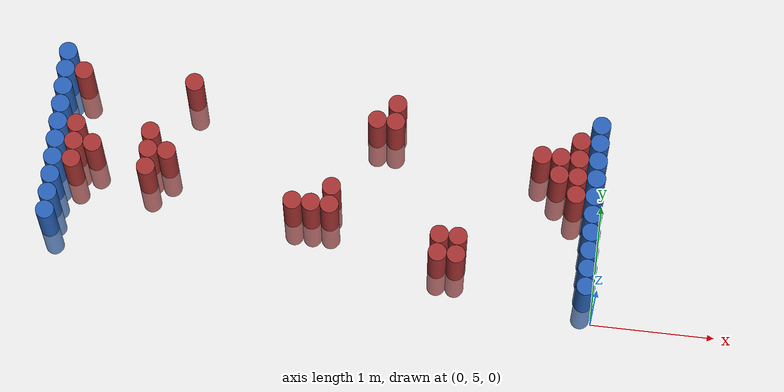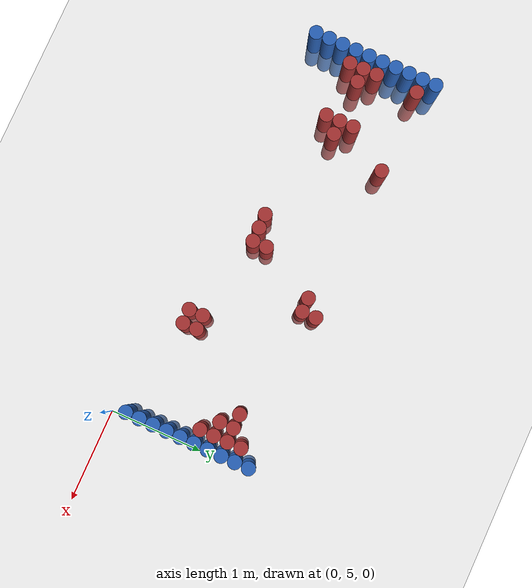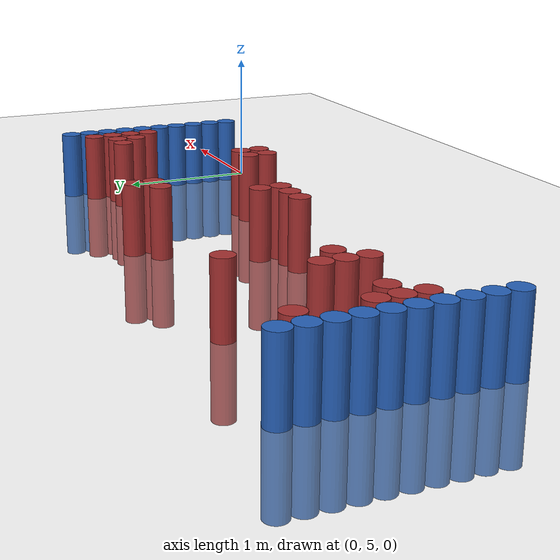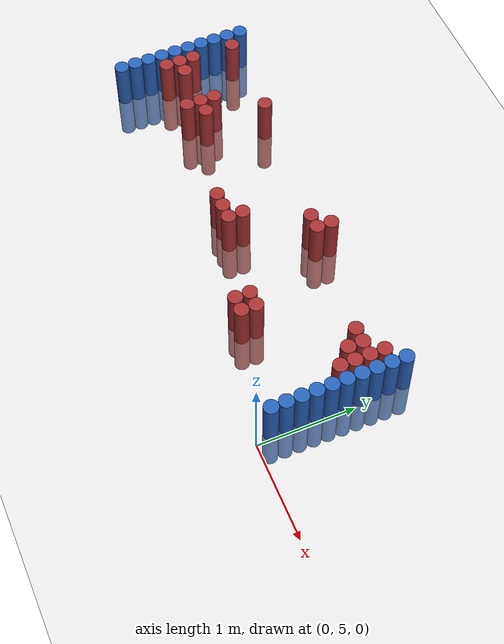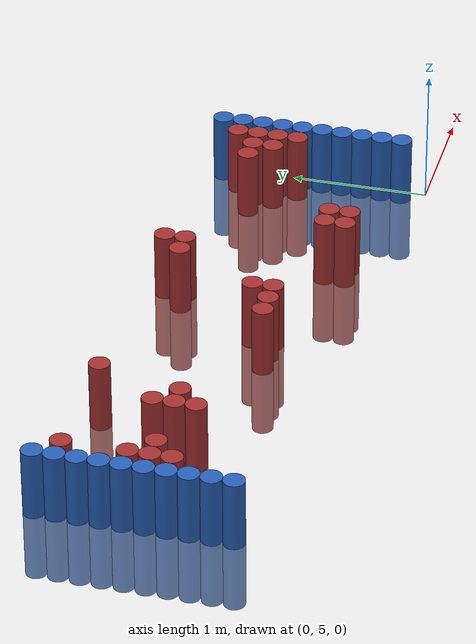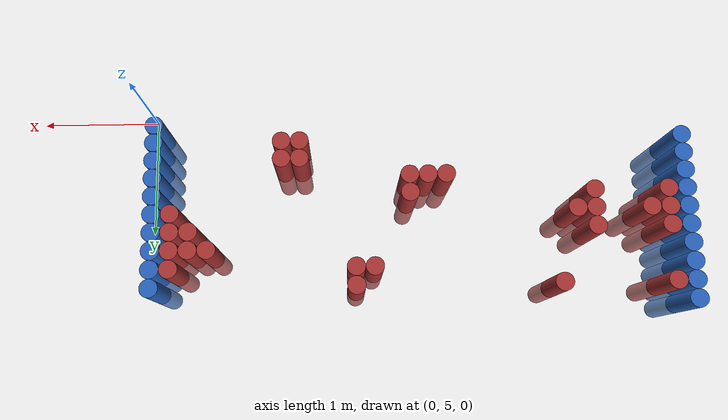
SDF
<sdf version="1.6">
 <world name="default">
  <model name="ground_plane">
   <static>1</static>
   <link name="link">
    <collision name="collision">
     <geometry><plane><normal>0 0 1</normal><size>100 100</size></plane></geometry>
     <surface><friction><ode><mu>100</mu><mu2>50</mu2></ode></friction></surface>
    </collision>
    <visual name="visual">
     <cast_shadows>0</cast_shadows>
     <geometry><plane><normal>0 0 1</normal><size>100 100</size></plane></geometry>
     <material>
      <script><uri>file://media/materials/scripts/gazebo.material</uri><name>Gazebo/Grey</name></script>
     </material>
    </visual>
   </link>
  </model>
  <model name="unit_cylinder_97">
   <static>1</static>
   <pose>-4.425000 5.325000 0.000000 0.000000 0.000000 0.000000</pose>
   <link name="link">
    <inertial>
     <mass>1</mass>
     <inertia><ixx>0.145833</ixx><ixy>0</ixy><ixz>0</ixz><iyy>0.145833</iyy><iyz>0</iyz><izz>0.125</izz></inertia>
    </inertial>
    <collision name="collision">
     <geometry><cylinder><radius>0.075000</radius><length>1</length></cylinder></geometry>
    </collision>
    <visual name="visual">
     <geometry><cylinder><radius>0.075000</radius><length>1</length></cylinder></geometry>
     <material>
      <ambient>0.152000 0.379000 0.720000 1</ambient>
      <diffuse>0.152000 0.379000 0.720000 1</diffuse>
     </material>
     <material>
      <script><name>Gazebo/Grey</name><uri>file://media/materials/scripts/gazebo.material</uri></script>
     </material>
    </visual>
   </link>
  </model>
  <model name="unit_cylinder_98">
   <static>1</static>
   <pose>-4.425000 5.475000 0.000000 0.000000 0.000000 0.000000</pose>
   <link name="link">
    <inertial>
     <mass>1</mass>
     <inertia><ixx>0.145833</ixx><ixy>0</ixy><ixz>0</ixz><iyy>0.145833</iyy><iyz>0</iyz><izz>0.125</izz></inertia>
    </inertial>
    <collision name="collision">
     <geometry><cylinder><radius>0.075000</radius><length>1</length></cylinder></geometry>
    </collision>
    <visual name="visual">
     <geometry><cylinder><radius>0.075000</radius><length>1</length></cylinder></geometry>
     <material>
      <ambient>0.152000 0.379000 0.720000 1</ambient>
      <diffuse>0.152000 0.379000 0.720000 1</diffuse>
     </material>
     <material>
      <script><name>Gazebo/Grey</name><uri>file://media/materials/scripts/gazebo.material</uri></script>
     </material>
    </visual>
   </link>
  </model>
  <model name="unit_cylinder_99">
   <static>1</static>
   <pose>-4.425000 5.625000 0.000000 0.000000 0.000000 0.000000</pose>
   <link name="link">
    <inertial>
     <mass>1</mass>
     <inertia><ixx>0.145833</ixx><ixy>0</ixy><ixz>0</ixz><iyy>0.145833</iyy><iyz>0</iyz><izz>0.125</izz></inertia>
    </inertial>
    <collision name="collision">
     <geometry><cylinder><radius>0.075000</radius><length>1</length></cylinder></geometry>
    </collision>
    <visual name="visual">
     <geometry><cylinder><radius>0.075000</radius><length>1</length></cylinder></geometry>
     <material>
      <ambient>0.152000 0.379000 0.720000 1</ambient>
      <diffuse>0.152000 0.379000 0.720000 1</diffuse>
     </material>
     <material>
      <script><name>Gazebo/Grey</name><uri>file://media/materials/scripts/gazebo.material</uri></script>
     </material>
    </visual>
   </link>
  </model>
  <model name="unit_cylinder_100">
   <static>1</static>
   <pose>-4.425000 5.775000 0.000000 0.000000 0.000000 0.000000</pose>
   <link name="link">
    <inertial>
     <mass>1</mass>
     <inertia><ixx>0.145833</ixx><ixy>0</ixy><ixz>0</ixz><iyy>0.145833</iyy><iyz>0</iyz><izz>0.125</izz></inertia>
    </inertial>
    <collision name="collision">
     <geometry><cylinder><radius>0.075000</radius><length>1</length></cylinder></geometry>
    </collision>
    <visual name="visual">
     <geometry><cylinder><radius>0.075000</radius><length>1</length></cylinder></geometry>
     <material>
      <ambient>0.152000 0.379000 0.720000 1</ambient>
      <diffuse>0.152000 0.379000 0.720000 1</diffuse>
     </material>
     <material>
      <script><name>Gazebo/Grey</name><uri>file://media/materials/scripts/gazebo.material</uri></script>
     </material>
    </visual>
   </link>
  </model>
  <model name="unit_cylinder_101">
   <static>1</static>
   <pose>-4.425000 5.925000 0.000000 0.000000 0.000000 0.000000</pose>
   <link name="link">
    <inertial>
     <mass>1</mass>
     <inertia><ixx>0.145833</ixx><ixy>0</ixy><ixz>0</ixz><iyy>0.145833</iyy><iyz>0</iyz><izz>0.125</izz></inertia>
    </inertial>
    <collision name="collision">
     <geometry><cylinder><radius>0.075000</radius><length>1</length></cylinder></geometry>
    </collision>
    <visual name="visual">
     <geometry><cylinder><radius>0.075000</radius><length>1</length></cylinder></geometry>
     <material>
      <ambient>0.152000 0.379000 0.720000 1</ambient>
      <diffuse>0.152000 0.379000 0.720000 1</diffuse>
     </material>
     <material>
      <script><name>Gazebo/Grey</name><uri>file://media/materials/scripts/gazebo.material</uri></script>
     </material>
    </visual>
   </link>
  </model>
  <model name="unit_cylinder_102">
   <static>1</static>
   <pose>-4.425000 6.075000 0.000000 0.000000 0.000000 0.000000</pose>
   <link name="link">
    <inertial>
     <mass>1</mass>
     <inertia><ixx>0.145833</ixx><ixy>0</ixy><ixz>0</ixz><iyy>0.145833</iyy><iyz>0</iyz><izz>0.125</izz></inertia>
    </inertial>
    <collision name="collision">
     <geometry><cylinder><radius>0.075000</radius><length>1</length></cylinder></geometry>
    </collision>
    <visual name="visual">
     <geometry><cylinder><radius>0.075000</radius><length>1</length></cylinder></geometry>
     <material>
      <ambient>0.152000 0.379000 0.720000 1</ambient>
      <diffuse>0.152000 0.379000 0.720000 1</diffuse>
     </material>
     <material>
      <script><name>Gazebo/Grey</name><uri>file://media/materials/scripts/gazebo.material</uri></script>
     </material>
    </visual>
   </link>
  </model>
  <model name="unit_cylinder_103">
   <static>1</static>
   <pose>-4.425000 6.225000 0.000000 0.000000 0.000000 0.000000</pose>
   <link name="link">
    <inertial>
     <mass>1</mass>
     <inertia><ixx>0.145833</ixx><ixy>0</ixy><ixz>0</ixz><iyy>0.145833</iyy><iyz>0</iyz><izz>0.125</izz></inertia>
    </inertial>
    <collision name="collision">
     <geometry><cylinder><radius>0.075000</radius><length>1</length></cylinder></geometry>
    </collision>
    <visual name="visual">
     <geometry><cylinder><radius>0.075000</radius><length>1</length></cylinder></geometry>
     <material>
      <ambient>0.152000 0.379000 0.720000 1</ambient>
      <diffuse>0.152000 0.379000 0.720000 1</diffuse>
     </material>
     <material>
      <script><name>Gazebo/Grey</name><uri>file://media/materials/scripts/gazebo.material</uri></script>
     </material>
    </visual>
   </link>
  </model>
  <model name="unit_cylinder_104">
   <static>1</static>
   <pose>-4.425000 6.375000 0.000000 0.000000 0.000000 0.000000</pose>
   <link name="link">
    <inertial>
     <mass>1</mass>
     <inertia><ixx>0.145833</ixx><ixy>0</ixy><ixz>0</ixz><iyy>0.145833</iyy><iyz>0</iyz><izz>0.125</izz></inertia>
    </inertial>
    <collision name="collision">
     <geometry><cylinder><radius>0.075000</radius><length>1</length></cylinder></geometry>
    </collision>
    <visual name="visual">
     <geometry><cylinder><radius>0.075000</radius><length>1</length></cylinder></geometry>
     <material>
      <ambient>0.152000 0.379000 0.720000 1</ambient>
      <diffuse>0.152000 0.379000 0.720000 1</diffuse>
     </material>
     <material>
      <script><name>Gazebo/Grey</name><uri>file://media/materials/scripts/gazebo.material</uri></script>
     </material>
    </visual>
   </link>
  </model>
  <model name="unit_cylinder_105">
   <static>1</static>
   <pose>-4.425000 6.525000 0.000000 0.000000 0.000000 0.000000</pose>
   <link name="link">
    <inertial>
     <mass>1</mass>
     <inertia><ixx>0.145833</ixx><ixy>0</ixy><ixz>0</ixz><iyy>0.145833</iyy><iyz>0</iyz><izz>0.125</izz></inertia>
    </inertial>
    <collision name="collision">
     <geometry><cylinder><radius>0.075000</radius><length>1</length></cylinder></geometry>
    </collision>
    <visual name="visual">
     <geometry><cylinder><radius>0.075000</radius><length>1</length></cylinder></geometry>
     <material>
      <ambient>0.152000 0.379000 0.720000 1</ambient>
      <diffuse>0.152000 0.379000 0.720000 1</diffuse>
     </material>
     <material>
      <script><name>Gazebo/Grey</name><uri>file://media/materials/scripts/gazebo.material</uri></script>
     </material>
    </visual>
   </link>
  </model>
  <model name="unit_cylinder_106">
   <static>1</static>
   <pose>-4.425000 6.675000 0.000000 0.000000 0.000000 0.000000</pose>
   <link name="link">
    <inertial>
     <mass>1</mass>
     <inertia><ixx>0.145833</ixx><ixy>0</ixy><ixz>0</ixz><iyy>0.145833</iyy><iyz>0</iyz><izz>0.125</izz></inertia>
    </inertial>
    <collision name="collision">
     <geometry><cylinder><radius>0.075000</radius><length>1</length></cylinder></geometry>
    </collision>
    <visual name="visual">
     <geometry><cylinder><radius>0.075000</radius><length>1</length></cylinder></geometry>
     <material>
      <ambient>0.152000 0.379000 0.720000 1</ambient>
      <diffuse>0.152000 0.379000 0.720000 1</diffuse>
     </material>
     <material>
      <script><name>Gazebo/Grey</name><uri>file://media/materials/scripts/gazebo.material</uri></script>
     </material>
    </visual>
   </link>
  </model>
  <model name="unit_cylinder_126">
   <static>1</static>
   <pose>-4.275000 5.775000 0.000000 0.000000 0.000000 0.000000</pose>
   <link name="link">
    <inertial>
     <mass>1</mass>
     <inertia><ixx>0.145833</ixx><ixy>0</ixy><ixz>0</ixz><iyy>0.145833</iyy><iyz>0</iyz><izz>0.125</izz></inertia>
    </inertial>
    <collision name="collision">
     <geometry><cylinder><radius>0.075000</radius><length>1</length></cylinder></geometry>
    </collision>
    <visual name="visual">
     <geometry><cylinder><radius>0.075000</radius><length>1</length></cylinder></geometry>
     <material>
      <ambient>0.648000 0.192000 0.192000 1</ambient>
      <diffuse>0.648000 0.192000 0.192000 1</diffuse>
     </material>
     <material>
      <script><name>Gazebo/Grey</name><uri>file://media/materials/scripts/gazebo.material</uri></script>
     </material>
    </visual>
   </link>
  </model>
  <model name="unit_cylinder_127">
   <static>1</static>
   <pose>-4.275000 5.925000 0.000000 0.000000 0.000000 0.000000</pose>
   <link name="link">
    <inertial>
     <mass>1</mass>
     <inertia><ixx>0.145833</ixx><ixy>0</ixy><ixz>0</ixz><iyy>0.145833</iyy><iyz>0</iyz><izz>0.125</izz></inertia>
    </inertial>
    <collision name="collision">
     <geometry><cylinder><radius>0.075000</radius><length>1</length></cylinder></geometry>
    </collision>
    <visual name="visual">
     <geometry><cylinder><radius>0.075000</radius><length>1</length></cylinder></geometry>
     <material>
      <ambient>0.648000 0.192000 0.192000 1</ambient>
      <diffuse>0.648000 0.192000 0.192000 1</diffuse>
     </material>
     <material>
      <script><name>Gazebo/Grey</name><uri>file://media/materials/scripts/gazebo.material</uri></script>
     </material>
    </visual>
   </link>
  </model>
  <model name="unit_cylinder_128">
   <static>1</static>
   <pose>-4.275000 6.075000 0.000000 0.000000 0.000000 0.000000</pose>
   <link name="link">
    <inertial>
     <mass>1</mass>
     <inertia><ixx>0.145833</ixx><ixy>0</ixy><ixz>0</ixz><iyy>0.145833</iyy><iyz>0</iyz><izz>0.125</izz></inertia>
    </inertial>
    <collision name="collision">
     <geometry><cylinder><radius>0.075000</radius><length>1</length></cylinder></geometry>
    </collision>
    <visual name="visual">
     <geometry><cylinder><radius>0.075000</radius><length>1</length></cylinder></geometry>
     <material>
      <ambient>0.648000 0.192000 0.192000 1</ambient>
      <diffuse>0.648000 0.192000 0.192000 1</diffuse>
     </material>
     <material>
      <script><name>Gazebo/Grey</name><uri>file://media/materials/scripts/gazebo.material</uri></script>
     </material>
    </visual>
   </link>
  </model>
  <model name="unit_cylinder_129">
   <static>1</static>
   <pose>-4.275000 6.525000 0.000000 0.000000 0.000000 0.000000</pose>
   <link name="link">
    <inertial>
     <mass>1</mass>
     <inertia><ixx>0.145833</ixx><ixy>0</ixy><ixz>0</ixz><iyy>0.145833</iyy><iyz>0</iyz><izz>0.125</izz></inertia>
    </inertial>
    <collision name="collision">
     <geometry><cylinder><radius>0.075000</radius><length>1</length></cylinder></geometry>
    </collision>
    <visual name="visual">
     <geometry><cylinder><radius>0.075000</radius><length>1</length></cylinder></geometry>
     <material>
      <ambient>0.648000 0.192000 0.192000 1</ambient>
      <diffuse>0.648000 0.192000 0.192000 1</diffuse>
     </material>
     <material>
      <script><name>Gazebo/Grey</name><uri>file://media/materials/scripts/gazebo.material</uri></script>
     </material>
    </visual>
   </link>
  </model>
  <model name="unit_cylinder_144">
   <static>1</static>
   <pose>-4.125000 5.925000 0.000000 0.000000 0.000000 0.000000</pose>
   <link name="link">
    <inertial>
     <mass>1</mass>
     <inertia><ixx>0.145833</ixx><ixy>0</ixy><ixz>0</ixz><iyy>0.145833</iyy><iyz>0</iyz><izz>0.125</izz></inertia>
    </inertial>
    <collision name="collision">
     <geometry><cylinder><radius>0.075000</radius><length>1</length></cylinder></geometry>
    </collision>
    <visual name="visual">
     <geometry><cylinder><radius>0.075000</radius><length>1</length></cylinder></geometry>
     <material>
      <ambient>0.648000 0.192000 0.192000 1</ambient>
      <diffuse>0.648000 0.192000 0.192000 1</diffuse>
     </material>
     <material>
      <script><name>Gazebo/Grey</name><uri>file://media/materials/scripts/gazebo.material</uri></script>
     </material>
    </visual>
   </link>
  </model>
  <model name="unit_cylinder_151">
   <static>1</static>
   <pose>-3.675000 5.775000 0.000000 0.000000 0.000000 0.000000</pose>
   <link name="link">
    <inertial>
     <mass>1</mass>
     <inertia><ixx>0.145833</ixx><ixy>0</ixy><ixz>0</ixz><iyy>0.145833</iyy><iyz>0</iyz><izz>0.125</izz></inertia>
    </inertial>
    <collision name="collision">
     <geometry><cylinder><radius>0.075000</radius><length>1</length></cylinder></geometry>
    </collision>
    <visual name="visual">
     <geometry><cylinder><radius>0.075000</radius><length>1</length></cylinder></geometry>
     <material>
      <ambient>0.648000 0.192000 0.192000 1</ambient>
      <diffuse>0.648000 0.192000 0.192000 1</diffuse>
     </material>
     <material>
      <script><name>Gazebo/Grey</name><uri>file://media/materials/scripts/gazebo.material</uri></script>
     </material>
    </visual>
   </link>
  </model>
  <model name="unit_cylinder_152">
   <static>1</static>
   <pose>-3.675000 5.925000 0.000000 0.000000 0.000000 0.000000</pose>
   <link name="link">
    <inertial>
     <mass>1</mass>
     <inertia><ixx>0.145833</ixx><ixy>0</ixy><ixz>0</ixz><iyy>0.145833</iyy><iyz>0</iyz><izz>0.125</izz></inertia>
    </inertial>
    <collision name="collision">
     <geometry><cylinder><radius>0.075000</radius><length>1</length></cylinder></geometry>
    </collision>
    <visual name="visual">
     <geometry><cylinder><radius>0.075000</radius><length>1</length></cylinder></geometry>
     <material>
      <ambient>0.648000 0.192000 0.192000 1</ambient>
      <diffuse>0.648000 0.192000 0.192000 1</diffuse>
     </material>
     <material>
      <script><name>Gazebo/Grey</name><uri>file://media/materials/scripts/gazebo.material</uri></script>
     </material>
    </visual>
   </link>
  </model>
  <model name="unit_cylinder_153">
   <static>1</static>
   <pose>-3.675000 6.075000 0.000000 0.000000 0.000000 0.000000</pose>
   <link name="link">
    <inertial>
     <mass>1</mass>
     <inertia><ixx>0.145833</ixx><ixy>0</ixy><ixz>0</ixz><iyy>0.145833</iyy><iyz>0</iyz><izz>0.125</izz></inertia>
    </inertial>
    <collision name="collision">
     <geometry><cylinder><radius>0.075000</radius><length>1</length></cylinder></geometry>
    </collision>
    <visual name="visual">
     <geometry><cylinder><radius>0.075000</radius><length>1</length></cylinder></geometry>
     <material>
      <ambient>0.648000 0.192000 0.192000 1</ambient>
      <diffuse>0.648000 0.192000 0.192000 1</diffuse>
     </material>
     <material>
      <script><name>Gazebo/Grey</name><uri>file://media/materials/scripts/gazebo.material</uri></script>
     </material>
    </visual>
   </link>
  </model>
  <model name="unit_cylinder_157">
   <static>1</static>
   <pose>-3.525000 5.925000 0.000000 0.000000 0.000000 0.000000</pose>
   <link name="link">
    <inertial>
     <mass>1</mass>
     <inertia><ixx>0.145833</ixx><ixy>0</ixy><ixz>0</ixz><iyy>0.145833</iyy><iyz>0</iyz><izz>0.125</izz></inertia>
    </inertial>
    <collision name="collision">
     <geometry><cylinder><radius>0.075000</radius><length>1</length></cylinder></geometry>
    </collision>
    <visual name="visual">
     <geometry><cylinder><radius>0.075000</radius><length>1</length></cylinder></geometry>
     <material>
      <ambient>0.648000 0.192000 0.192000 1</ambient>
      <diffuse>0.648000 0.192000 0.192000 1</diffuse>
     </material>
     <material>
      <script><name>Gazebo/Grey</name><uri>file://media/materials/scripts/gazebo.material</uri></script>
     </material>
    </visual>
   </link>
  </model>
  <model name="unit_cylinder_163">
   <static>1</static>
   <pose>-3.375000 6.525000 0.000000 0.000000 0.000000 0.000000</pose>
   <link name="link">
    <inertial>
     <mass>1</mass>
     <inertia><ixx>0.145833</ixx><ixy>0</ixy><ixz>0</ixz><iyy>0.145833</iyy><iyz>0</iyz><izz>0.125</izz></inertia>
    </inertial>
    <collision name="collision">
     <geometry><cylinder><radius>0.075000</radius><length>1</length></cylinder></geometry>
    </collision>
    <visual name="visual">
     <geometry><cylinder><radius>0.075000</radius><length>1</length></cylinder></geometry>
     <material>
      <ambient>0.648000 0.192000 0.192000 1</ambient>
      <diffuse>0.648000 0.192000 0.192000 1</diffuse>
     </material>
     <material>
      <script><name>Gazebo/Grey</name><uri>file://media/materials/scripts/gazebo.material</uri></script>
     </material>
    </visual>
   </link>
  </model>
  <model name="unit_cylinder_172">
   <static>1</static>
   <pose>-2.475000 5.625000 0.000000 0.000000 0.000000 0.000000</pose>
   <link name="link">
    <inertial>
     <mass>1</mass>
     <inertia><ixx>0.145833</ixx><ixy>0</ixy><ixz>0</ixz><iyy>0.145833</iyy><iyz>0</iyz><izz>0.125</izz></inertia>
    </inertial>
    <collision name="collision">
     <geometry><cylinder><radius>0.075000</radius><length>1</length></cylinder></geometry>
    </collision>
    <visual name="visual">
     <geometry><cylinder><radius>0.075000</radius><length>1</length></cylinder></geometry>
     <material>
      <ambient>0.648000 0.192000 0.192000 1</ambient>
      <diffuse>0.648000 0.192000 0.192000 1</diffuse>
     </material>
     <material>
      <script><name>Gazebo/Grey</name><uri>file://media/materials/scripts/gazebo.material</uri></script>
     </material>
    </visual>
   </link>
  </model>
  <model name="unit_cylinder_173">
   <static>1</static>
   <pose>-2.325000 5.625000 0.000000 0.000000 0.000000 0.000000</pose>
   <link name="link">
    <inertial>
     <mass>1</mass>
     <inertia><ixx>0.145833</ixx><ixy>0</ixy><ixz>0</ixz><iyy>0.145833</iyy><iyz>0</iyz><izz>0.125</izz></inertia>
    </inertial>
    <collision name="collision">
     <geometry><cylinder><radius>0.075000</radius><length>1</length></cylinder></geometry>
    </collision>
    <visual name="visual">
     <geometry><cylinder><radius>0.075000</radius><length>1</length></cylinder></geometry>
     <material>
      <ambient>0.648000 0.192000 0.192000 1</ambient>
      <diffuse>0.648000 0.192000 0.192000 1</diffuse>
     </material>
     <material>
      <script><name>Gazebo/Grey</name><uri>file://media/materials/scripts/gazebo.material</uri></script>
     </material>
    </visual>
   </link>
  </model>
  <model name="unit_cylinder_174">
   <static>1</static>
   <pose>-2.175000 5.625000 0.000000 0.000000 0.000000 0.000000</pose>
   <link name="link">
    <inertial>
     <mass>1</mass>
     <inertia><ixx>0.145833</ixx><ixy>0</ixy><ixz>0</ixz><iyy>0.145833</iyy><iyz>0</iyz><izz>0.125</izz></inertia>
    </inertial>
    <collision name="collision">
     <geometry><cylinder><radius>0.075000</radius><length>1</length></cylinder></geometry>
    </collision>
    <visual name="visual">
     <geometry><cylinder><radius>0.075000</radius><length>1</length></cylinder></geometry>
     <material>
      <ambient>0.648000 0.192000 0.192000 1</ambient>
      <diffuse>0.648000 0.192000 0.192000 1</diffuse>
     </material>
     <material>
      <script><name>Gazebo/Grey</name><uri>file://media/materials/scripts/gazebo.material</uri></script>
     </material>
    </visual>
   </link>
  </model>
  <model name="unit_cylinder_175">
   <static>1</static>
   <pose>-2.175000 5.775000 0.000000 0.000000 0.000000 0.000000</pose>
   <link name="link">
    <inertial>
     <mass>1</mass>
     <inertia><ixx>0.145833</ixx><ixy>0</ixy><ixz>0</ixz><iyy>0.145833</iyy><iyz>0</iyz><izz>0.125</izz></inertia>
    </inertial>
    <collision name="collision">
     <geometry><cylinder><radius>0.075000</radius><length>1</length></cylinder></geometry>
    </collision>
    <visual name="visual">
     <geometry><cylinder><radius>0.075000</radius><length>1</length></cylinder></geometry>
     <material>
      <ambient>0.648000 0.192000 0.192000 1</ambient>
      <diffuse>0.648000 0.192000 0.192000 1</diffuse>
     </material>
     <material>
      <script><name>Gazebo/Grey</name><uri>file://media/materials/scripts/gazebo.material</uri></script>
     </material>
    </visual>
   </link>
  </model>
  <model name="unit_cylinder_177">
   <static>1</static>
   <pose>-1.875000 6.375000 0.000000 0.000000 0.000000 0.000000</pose>
   <link name="link">
    <inertial>
     <mass>1</mass>
     <inertia><ixx>0.145833</ixx><ixy>0</ixy><ixz>0</ixz><iyy>0.145833</iyy><iyz>0</iyz><izz>0.125</izz></inertia>
    </inertial>
    <collision name="collision">
     <geometry><cylinder><radius>0.075000</radius><length>1</length></cylinder></geometry>
    </collision>
    <visual name="visual">
     <geometry><cylinder><radius>0.075000</radius><length>1</length></cylinder></geometry>
     <material>
      <ambient>0.648000 0.192000 0.192000 1</ambient>
      <diffuse>0.648000 0.192000 0.192000 1</diffuse>
     </material>
     <material>
      <script><name>Gazebo/Grey</name><uri>file://media/materials/scripts/gazebo.material</uri></script>
     </material>
    </visual>
   </link>
  </model>
  <model name="unit_cylinder_180">
   <static>1</static>
   <pose>-1.725000 6.375000 0.000000 0.000000 0.000000 0.000000</pose>
   <link name="link">
    <inertial>
     <mass>1</mass>
     <inertia><ixx>0.145833</ixx><ixy>0</ixy><ixz>0</ixz><iyy>0.145833</iyy><iyz>0</iyz><izz>0.125</izz></inertia>
    </inertial>
    <collision name="collision">
     <geometry><cylinder><radius>0.075000</radius><length>1</length></cylinder></geometry>
    </collision>
    <visual name="visual">
     <geometry><cylinder><radius>0.075000</radius><length>1</length></cylinder></geometry>
     <material>
      <ambient>0.648000 0.192000 0.192000 1</ambient>
      <diffuse>0.648000 0.192000 0.192000 1</diffuse>
     </material>
     <material>
      <script><name>Gazebo/Grey</name><uri>file://media/materials/scripts/gazebo.material</uri></script>
     </material>
    </visual>
   </link>
  </model>
  <model name="unit_cylinder_181">
   <static>1</static>
   <pose>-1.725000 6.525000 0.000000 0.000000 0.000000 0.000000</pose>
   <link name="link">
    <inertial>
     <mass>1</mass>
     <inertia><ixx>0.145833</ixx><ixy>0</ixy><ixz>0</ixz><iyy>0.145833</iyy><iyz>0</iyz><izz>0.125</izz></inertia>
    </inertial>
    <collision name="collision">
     <geometry><cylinder><radius>0.075000</radius><length>1</length></cylinder></geometry>
    </collision>
    <visual name="visual">
     <geometry><cylinder><radius>0.075000</radius><length>1</length></cylinder></geometry>
     <material>
      <ambient>0.648000 0.192000 0.192000 1</ambient>
      <diffuse>0.648000 0.192000 0.192000 1</diffuse>
     </material>
     <material>
      <script><name>Gazebo/Grey</name><uri>file://media/materials/scripts/gazebo.material</uri></script>
     </material>
    </visual>
   </link>
  </model>
  <model name="unit_cylinder_185">
   <static>1</static>
   <pose>-1.275000 5.325000 0.000000 0.000000 0.000000 0.000000</pose>
   <link name="link">
    <inertial>
     <mass>1</mass>
     <inertia><ixx>0.145833</ixx><ixy>0</ixy><ixz>0</ixz><iyy>0.145833</iyy><iyz>0</iyz><izz>0.125</izz></inertia>
    </inertial>
    <collision name="collision">
     <geometry><cylinder><radius>0.075000</radius><length>1</length></cylinder></geometry>
    </collision>
    <visual name="visual">
     <geometry><cylinder><radius>0.075000</radius><length>1</length></cylinder></geometry>
     <material>
      <ambient>0.648000 0.192000 0.192000 1</ambient>
      <diffuse>0.648000 0.192000 0.192000 1</diffuse>
     </material>
     <material>
      <script><name>Gazebo/Grey</name><uri>file://media/materials/scripts/gazebo.material</uri></script>
     </material>
    </visual>
   </link>
  </model>
  <model name="unit_cylinder_186">
   <static>1</static>
   <pose>-1.275000 5.475000 0.000000 0.000000 0.000000 0.000000</pose>
   <link name="link">
    <inertial>
     <mass>1</mass>
     <inertia><ixx>0.145833</ixx><ixy>0</ixy><ixz>0</ixz><iyy>0.145833</iyy><iyz>0</iyz><izz>0.125</izz></inertia>
    </inertial>
    <collision name="collision">
     <geometry><cylinder><radius>0.075000</radius><length>1</length></cylinder></geometry>
    </collision>
    <visual name="visual">
     <geometry><cylinder><radius>0.075000</radius><length>1</length></cylinder></geometry>
     <material>
      <ambient>0.648000 0.192000 0.192000 1</ambient>
      <diffuse>0.648000 0.192000 0.192000 1</diffuse>
     </material>
     <material>
      <script><name>Gazebo/Grey</name><uri>file://media/materials/scripts/gazebo.material</uri></script>
     </material>
    </visual>
   </link>
  </model>
  <model name="unit_cylinder_187">
   <static>1</static>
   <pose>-1.125000 5.325000 0.000000 0.000000 0.000000 0.000000</pose>
   <link name="link">
    <inertial>
     <mass>1</mass>
     <inertia><ixx>0.145833</ixx><ixy>0</ixy><ixz>0</ixz><iyy>0.145833</iyy><iyz>0</iyz><izz>0.125</izz></inertia>
    </inertial>
    <collision name="collision">
     <geometry><cylinder><radius>0.075000</radius><length>1</length></cylinder></geometry>
    </collision>
    <visual name="visual">
     <geometry><cylinder><radius>0.075000</radius><length>1</length></cylinder></geometry>
     <material>
      <ambient>0.648000 0.192000 0.192000 1</ambient>
      <diffuse>0.648000 0.192000 0.192000 1</diffuse>
     </material>
     <material>
      <script><name>Gazebo/Grey</name><uri>file://media/materials/scripts/gazebo.material</uri></script>
     </material>
    </visual>
   </link>
  </model>
  <model name="unit_cylinder_188">
   <static>1</static>
   <pose>-1.125000 5.475000 0.000000 0.000000 0.000000 0.000000</pose>
   <link name="link">
    <inertial>
     <mass>1</mass>
     <inertia><ixx>0.145833</ixx><ixy>0</ixy><ixz>0</ixz><iyy>0.145833</iyy><iyz>0</iyz><izz>0.125</izz></inertia>
    </inertial>
    <collision name="collision">
     <geometry><cylinder><radius>0.075000</radius><length>1</length></cylinder></geometry>
    </collision>
    <visual name="visual">
     <geometry><cylinder><radius>0.075000</radius><length>1</length></cylinder></geometry>
     <material>
      <ambient>0.648000 0.192000 0.192000 1</ambient>
      <diffuse>0.648000 0.192000 0.192000 1</diffuse>
     </material>
     <material>
      <script><name>Gazebo/Grey</name><uri>file://media/materials/scripts/gazebo.material</uri></script>
     </material>
    </visual>
   </link>
  </model>
  <model name="unit_cylinder_193">
   <static>1</static>
   <pose>-0.525000 6.225000 0.000000 0.000000 0.000000 0.000000</pose>
   <link name="link">
    <inertial>
     <mass>1</mass>
     <inertia><ixx>0.145833</ixx><ixy>0</ixy><ixz>0</ixz><iyy>0.145833</iyy><iyz>0</iyz><izz>0.125</izz></inertia>
    </inertial>
    <collision name="collision">
     <geometry><cylinder><radius>0.075000</radius><length>1</length></cylinder></geometry>
    </collision>
    <visual name="visual">
     <geometry><cylinder><radius>0.075000</radius><length>1</length></cylinder></geometry>
     <material>
      <ambient>0.648000 0.192000 0.192000 1</ambient>
      <diffuse>0.648000 0.192000 0.192000 1</diffuse>
     </material>
     <material>
      <script><name>Gazebo/Grey</name><uri>file://media/materials/scripts/gazebo.material</uri></script>
     </material>
    </visual>
   </link>
  </model>
  <model name="unit_cylinder_198">
   <static>1</static>
   <pose>-0.375000 6.075000 0.000000 0.000000 0.000000 0.000000</pose>
   <link name="link">
    <inertial>
     <mass>1</mass>
     <inertia><ixx>0.145833</ixx><ixy>0</ixy><ixz>0</ixz><iyy>0.145833</iyy><iyz>0</iyz><izz>0.125</izz></inertia>
    </inertial>
    <collision name="collision">
     <geometry><cylinder><radius>0.075000</radius><length>1</length></cylinder></geometry>
    </collision>
    <visual name="visual">
     <geometry><cylinder><radius>0.075000</radius><length>1</length></cylinder></geometry>
     <material>
      <ambient>0.648000 0.192000 0.192000 1</ambient>
      <diffuse>0.648000 0.192000 0.192000 1</diffuse>
     </material>
     <material>
      <script><name>Gazebo/Grey</name><uri>file://media/materials/scripts/gazebo.material</uri></script>
     </material>
    </visual>
   </link>
  </model>
  <model name="unit_cylinder_199">
   <static>1</static>
   <pose>-0.375000 6.225000 0.000000 0.000000 0.000000 0.000000</pose>
   <link name="link">
    <inertial>
     <mass>1</mass>
     <inertia><ixx>0.145833</ixx><ixy>0</ixy><ixz>0</ixz><iyy>0.145833</iyy><iyz>0</iyz><izz>0.125</izz></inertia>
    </inertial>
    <collision name="collision">
     <geometry><cylinder><radius>0.075000</radius><length>1</length></cylinder></geometry>
    </collision>
    <visual name="visual">
     <geometry><cylinder><radius>0.075000</radius><length>1</length></cylinder></geometry>
     <material>
      <ambient>0.648000 0.192000 0.192000 1</ambient>
      <diffuse>0.648000 0.192000 0.192000 1</diffuse>
     </material>
     <material>
      <script><name>Gazebo/Grey</name><uri>file://media/materials/scripts/gazebo.material</uri></script>
     </material>
    </visual>
   </link>
  </model>
  <model name="unit_cylinder_203">
   <static>1</static>
   <pose>-0.225000 5.925000 0.000000 0.000000 0.000000 0.000000</pose>
   <link name="link">
    <inertial>
     <mass>1</mass>
     <inertia><ixx>0.145833</ixx><ixy>0</ixy><ixz>0</ixz><iyy>0.145833</iyy><iyz>0</iyz><izz>0.125</izz></inertia>
    </inertial>
    <collision name="collision">
     <geometry><cylinder><radius>0.075000</radius><length>1</length></cylinder></geometry>
    </collision>
    <visual name="visual">
     <geometry><cylinder><radius>0.075000</radius><length>1</length></cylinder></geometry>
     <material>
      <ambient>0.648000 0.192000 0.192000 1</ambient>
      <diffuse>0.648000 0.192000 0.192000 1</diffuse>
     </material>
     <material>
      <script><name>Gazebo/Grey</name><uri>file://media/materials/scripts/gazebo.material</uri></script>
     </material>
    </visual>
   </link>
  </model>
  <model name="unit_cylinder_204">
   <static>1</static>
   <pose>-0.225000 6.075000 0.000000 0.000000 0.000000 0.000000</pose>
   <link name="link">
    <inertial>
     <mass>1</mass>
     <inertia><ixx>0.145833</ixx><ixy>0</ixy><ixz>0</ixz><iyy>0.145833</iyy><iyz>0</iyz><izz>0.125</izz></inertia>
    </inertial>
    <collision name="collision">
     <geometry><cylinder><radius>0.075000</radius><length>1</length></cylinder></geometry>
    </collision>
    <visual name="visual">
     <geometry><cylinder><radius>0.075000</radius><length>1</length></cylinder></geometry>
     <material>
      <ambient>0.648000 0.192000 0.192000 1</ambient>
      <diffuse>0.648000 0.192000 0.192000 1</diffuse>
     </material>
     <material>
      <script><name>Gazebo/Grey</name><uri>file://media/materials/scripts/gazebo.material</uri></script>
     </material>
    </visual>
   </link>
  </model>
  <model name="unit_cylinder_205">
   <static>1</static>
   <pose>-0.225000 6.225000 0.000000 0.000000 0.000000 0.000000</pose>
   <link name="link">
    <inertial>
     <mass>1</mass>
     <inertia><ixx>0.145833</ixx><ixy>0</ixy><ixz>0</ixz><iyy>0.145833</iyy><iyz>0</iyz><izz>0.125</izz></inertia>
    </inertial>
    <collision name="collision">
     <geometry><cylinder><radius>0.075000</radius><length>1</length></cylinder></geometry>
    </collision>
    <visual name="visual">
     <geometry><cylinder><radius>0.075000</radius><length>1</length></cylinder></geometry>
     <material>
      <ambient>0.648000 0.192000 0.192000 1</ambient>
      <diffuse>0.648000 0.192000 0.192000 1</diffuse>
     </material>
     <material>
      <script><name>Gazebo/Grey</name><uri>file://media/materials/scripts/gazebo.material</uri></script>
     </material>
    </visual>
   </link>
  </model>
  <model name="unit_cylinder_206">
   <static>1</static>
   <pose>-0.225000 6.375000 0.000000 0.000000 0.000000 0.000000</pose>
   <link name="link">
    <inertial>
     <mass>1</mass>
     <inertia><ixx>0.145833</ixx><ixy>0</ixy><ixz>0</ixz><iyy>0.145833</iyy><iyz>0</iyz><izz>0.125</izz></inertia>
    </inertial>
    <collision name="collision">
     <geometry><cylinder><radius>0.075000</radius><length>1</length></cylinder></geometry>
    </collision>
    <visual name="visual">
     <geometry><cylinder><radius>0.075000</radius><length>1</length></cylinder></geometry>
     <material>
      <ambient>0.648000 0.192000 0.192000 1</ambient>
      <diffuse>0.648000 0.192000 0.192000 1</diffuse>
     </material>
     <material>
      <script><name>Gazebo/Grey</name><uri>file://media/materials/scripts/gazebo.material</uri></script>
     </material>
    </visual>
   </link>
  </model>
  <model name="unit_cylinder_211">
   <static>1</static>
   <pose>-0.075000 5.175000 0.000000 0.000000 0.000000 0.000000</pose>
   <link name="link">
    <inertial>
     <mass>1</mass>
     <inertia><ixx>0.145833</ixx><ixy>0</ixy><ixz>0</ixz><iyy>0.145833</iyy><iyz>0</iyz><izz>0.125</izz></inertia>
    </inertial>
    <collision name="collision">
     <geometry><cylinder><radius>0.075000</radius><length>1</length></cylinder></geometry>
    </collision>
    <visual name="visual">
     <geometry><cylinder><radius>0.075000</radius><length>1</length></cylinder></geometry>
     <material>
      <ambient>0.152000 0.379000 0.720000 1</ambient>
      <diffuse>0.152000 0.379000 0.720000 1</diffuse>
     </material>
     <material>
      <script><name>Gazebo/Grey</name><uri>file://media/materials/scripts/gazebo.material</uri></script>
     </material>
    </visual>
   </link>
  </model>
  <model name="unit_cylinder_212">
   <static>1</static>
   <pose>-0.075000 5.325000 0.000000 0.000000 0.000000 0.000000</pose>
   <link name="link">
    <inertial>
     <mass>1</mass>
     <inertia><ixx>0.145833</ixx><ixy>0</ixy><ixz>0</ixz><iyy>0.145833</iyy><iyz>0</iyz><izz>0.125</izz></inertia>
    </inertial>
    <collision name="collision">
     <geometry><cylinder><radius>0.075000</radius><length>1</length></cylinder></geometry>
    </collision>
    <visual name="visual">
     <geometry><cylinder><radius>0.075000</radius><length>1</length></cylinder></geometry>
     <material>
      <ambient>0.152000 0.379000 0.720000 1</ambient>
      <diffuse>0.152000 0.379000 0.720000 1</diffuse>
     </material>
     <material>
      <script><name>Gazebo/Grey</name><uri>file://media/materials/scripts/gazebo.material</uri></script>
     </material>
    </visual>
   </link>
  </model>
  <model name="unit_cylinder_213">
   <static>1</static>
   <pose>-0.075000 5.475000 0.000000 0.000000 0.000000 0.000000</pose>
   <link name="link">
    <inertial>
     <mass>1</mass>
     <inertia><ixx>0.145833</ixx><ixy>0</ixy><ixz>0</ixz><iyy>0.145833</iyy><iyz>0</iyz><izz>0.125</izz></inertia>
    </inertial>
    <collision name="collision">
     <geometry><cylinder><radius>0.075000</radius><length>1</length></cylinder></geometry>
    </collision>
    <visual name="visual">
     <geometry><cylinder><radius>0.075000</radius><length>1</length></cylinder></geometry>
     <material>
      <ambient>0.152000 0.379000 0.720000 1</ambient>
      <diffuse>0.152000 0.379000 0.720000 1</diffuse>
     </material>
     <material>
      <script><name>Gazebo/Grey</name><uri>file://media/materials/scripts/gazebo.material</uri></script>
     </material>
    </visual>
   </link>
  </model>
  <model name="unit_cylinder_214">
   <static>1</static>
   <pose>-0.075000 5.625000 0.000000 0.000000 0.000000 0.000000</pose>
   <link name="link">
    <inertial>
     <mass>1</mass>
     <inertia><ixx>0.145833</ixx><ixy>0</ixy><ixz>0</ixz><iyy>0.145833</iyy><iyz>0</iyz><izz>0.125</izz></inertia>
    </inertial>
    <collision name="collision">
     <geometry><cylinder><radius>0.075000</radius><length>1</length></cylinder></geometry>
    </collision>
    <visual name="visual">
     <geometry><cylinder><radius>0.075000</radius><length>1</length></cylinder></geometry>
     <material>
      <ambient>0.152000 0.379000 0.720000 1</ambient>
      <diffuse>0.152000 0.379000 0.720000 1</diffuse>
     </material>
     <material>
      <script><name>Gazebo/Grey</name><uri>file://media/materials/scripts/gazebo.material</uri></script>
     </material>
    </visual>
   </link>
  </model>
  <model name="unit_cylinder_215">
   <static>1</static>
   <pose>-0.075000 5.775000 0.000000 0.000000 0.000000 0.000000</pose>
   <link name="link">
    <inertial>
     <mass>1</mass>
     <inertia><ixx>0.145833</ixx><ixy>0</ixy><ixz>0</ixz><iyy>0.145833</iyy><iyz>0</iyz><izz>0.125</izz></inertia>
    </inertial>
    <collision name="collision">
     <geometry><cylinder><radius>0.075000</radius><length>1</length></cylinder></geometry>
    </collision>
    <visual name="visual">
     <geometry><cylinder><radius>0.075000</radius><length>1</length></cylinder></geometry>
     <material>
      <ambient>0.152000 0.379000 0.720000 1</ambient>
      <diffuse>0.152000 0.379000 0.720000 1</diffuse>
     </material>
     <material>
      <script><name>Gazebo/Grey</name><uri>file://media/materials/scripts/gazebo.material</uri></script>
     </material>
    </visual>
   </link>
  </model>
  <model name="unit_cylinder_216">
   <static>1</static>
   <pose>-0.075000 5.925000 0.000000 0.000000 0.000000 0.000000</pose>
   <link name="link">
    <inertial>
     <mass>1</mass>
     <inertia><ixx>0.145833</ixx><ixy>0</ixy><ixz>0</ixz><iyy>0.145833</iyy><iyz>0</iyz><izz>0.125</izz></inertia>
    </inertial>
    <collision name="collision">
     <geometry><cylinder><radius>0.075000</radius><length>1</length></cylinder></geometry>
    </collision>
    <visual name="visual">
     <geometry><cylinder><radius>0.075000</radius><length>1</length></cylinder></geometry>
     <material>
      <ambient>0.152000 0.379000 0.720000 1</ambient>
      <diffuse>0.152000 0.379000 0.720000 1</diffuse>
     </material>
     <material>
      <script><name>Gazebo/Grey</name><uri>file://media/materials/scripts/gazebo.material</uri></script>
     </material>
    </visual>
   </link>
  </model>
  <model name="unit_cylinder_217">
   <static>1</static>
   <pose>-0.075000 6.075000 0.000000 0.000000 0.000000 0.000000</pose>
   <link name="link">
    <inertial>
     <mass>1</mass>
     <inertia><ixx>0.145833</ixx><ixy>0</ixy><ixz>0</ixz><iyy>0.145833</iyy><iyz>0</iyz><izz>0.125</izz></inertia>
    </inertial>
    <collision name="collision">
     <geometry><cylinder><radius>0.075000</radius><length>1</length></cylinder></geometry>
    </collision>
    <visual name="visual">
     <geometry><cylinder><radius>0.075000</radius><length>1</length></cylinder></geometry>
     <material>
      <ambient>0.152000 0.379000 0.720000 1</ambient>
      <diffuse>0.152000 0.379000 0.720000 1</diffuse>
     </material>
     <material>
      <script><name>Gazebo/Grey</name><uri>file://media/materials/scripts/gazebo.material</uri></script>
     </material>
    </visual>
   </link>
  </model>
  <model name="unit_cylinder_218">
   <static>1</static>
   <pose>-0.075000 6.225000 0.000000 0.000000 0.000000 0.000000</pose>
   <link name="link">
    <inertial>
     <mass>1</mass>
     <inertia><ixx>0.145833</ixx><ixy>0</ixy><ixz>0</ixz><iyy>0.145833</iyy><iyz>0</iyz><izz>0.125</izz></inertia>
    </inertial>
    <collision name="collision">
     <geometry><cylinder><radius>0.075000</radius><length>1</length></cylinder></geometry>
    </collision>
    <visual name="visual">
     <geometry><cylinder><radius>0.075000</radius><length>1</length></cylinder></geometry>
     <material>
      <ambient>0.152000 0.379000 0.720000 1</ambient>
      <diffuse>0.152000 0.379000 0.720000 1</diffuse>
     </material>
     <material>
      <script><name>Gazebo/Grey</name><uri>file://media/materials/scripts/gazebo.material</uri></script>
     </material>
    </visual>
   </link>
  </model>
  <model name="unit_cylinder_219">
   <static>1</static>
   <pose>-0.075000 6.375000 0.000000 0.000000 0.000000 0.000000</pose>
   <link name="link">
    <inertial>
     <mass>1</mass>
     <inertia><ixx>0.145833</ixx><ixy>0</ixy><ixz>0</ixz><iyy>0.145833</iyy><iyz>0</iyz><izz>0.125</izz></inertia>
    </inertial>
    <collision name="collision">
     <geometry><cylinder><radius>0.075000</radius><length>1</length></cylinder></geometry>
    </collision>
    <visual name="visual">
     <geometry><cylinder><radius>0.075000</radius><length>1</length></cylinder></geometry>
     <material>
      <ambient>0.152000 0.379000 0.720000 1</ambient>
      <diffuse>0.152000 0.379000 0.720000 1</diffuse>
     </material>
     <material>
      <script><name>Gazebo/Grey</name><uri>file://media/materials/scripts/gazebo.material</uri></script>
     </material>
    </visual>
   </link>
  </model>
  <model name="unit_cylinder_220">
   <static>1</static>
   <pose>-0.075000 6.525000 0.000000 0.000000 0.000000 0.000000</pose>
   <link name="link">
    <inertial>
     <mass>1</mass>
     <inertia><ixx>0.145833</ixx><ixy>0</ixy><ixz>0</ixz><iyy>0.145833</iyy><iyz>0</iyz><izz>0.125</izz></inertia>
    </inertial>
    <collision name="collision">
     <geometry><cylinder><radius>0.075000</radius><length>1</length></cylinder></geometry>
    </collision>
    <visual name="visual">
     <geometry><cylinder><radius>0.075000</radius><length>1</length></cylinder></geometry>
     <material>
      <ambient>0.152000 0.379000 0.720000 1</ambient>
      <diffuse>0.152000 0.379000 0.720000 1</diffuse>
     </material>
     <material>
      <script><name>Gazebo/Grey</name><uri>file://media/materials/scripts/gazebo.material</uri></script>
     </material>
    </visual>
   </link>
  </model>
 </world>
</sdf>
